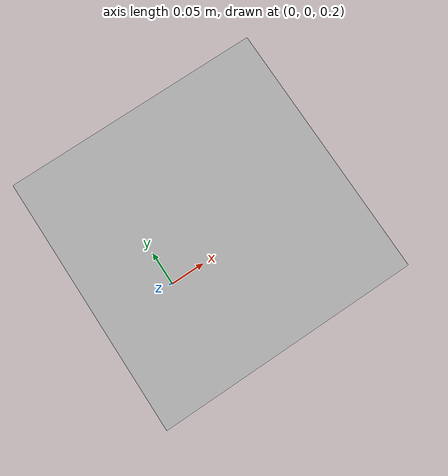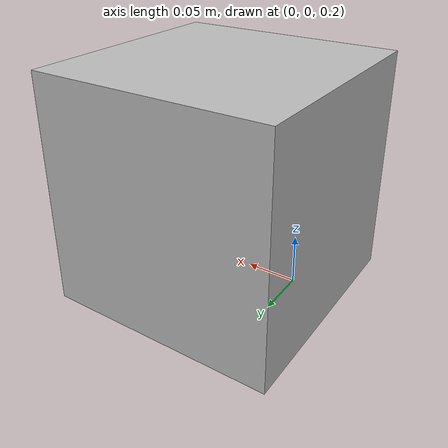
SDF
<?xml version="1.0" ?>
<sdf version="1.6">
  <model name="coca_block">
    <!-- dynamic, not static -->
    <static>false</static>
    <pose>0  0  0.2  0  0    0</pose>

    <link name="new_link">
      <inertial>
        <mass>0.5</mass>
        <inertia>
          <ixx>0.0052</ixx><iyy>0.0052</iyy><izz>0.0052</izz>
          <ixy>0</ixy><ixz>0</ixz><iyz>0</iyz>
        </inertia>
      </inertial>
      <collision name="collision">
        <geometry>
          <mesh>
            <scale>0.15 0.15 0.15</scale>
            <uri>model://coca_block/meshes/coca_block.stl</uri>
          </mesh>
        </geometry>
        <surface>
          <friction>
            <ode><mu>0.1</mu><mu2>0.1</mu2></ode>
          </friction>
        </surface>
      </collision>
      <visual name="visual">
        <geometry>
          <mesh>
            <scale>0.15 0.15 0.15</scale>
            <uri>model://coca_block/meshes/coca_block.dae</uri>
          </mesh>
        </geometry>
      </visual>
    </link>
  </model>
</sdf>
